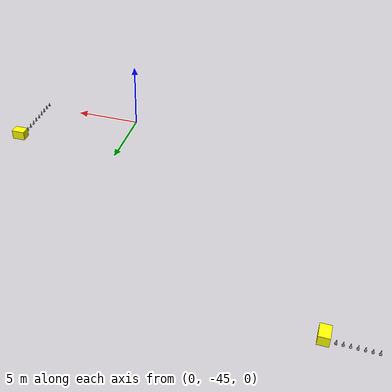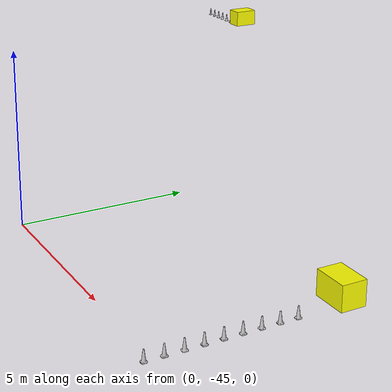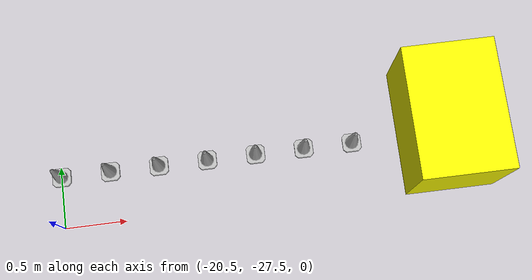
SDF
<sdf version="1.8">
 <world name="course_world">
  <physics name="1ms" type="ignored">
   <max_step_size>0.001</max_step_size>
   <real_time_factor>1.0</real_time_factor>
  </physics>
  <plugin filename="ignition-gazebo-physics-system" name="ignition::gazebo::systems::Physics"/>
  <plugin filename="ignition-gazebo-user-commands-system" name="ignition::gazebo::systems::UserCommands"/>
  <plugin filename="ignition-gazebo-scene-broadcaster-system" name="ignition::gazebo::systems::SceneBroadcaster"/>
  <scene><ambient>0.6 0.6 0.6 1</ambient><background>0.7 0.8 0.9 1</background></scene>
  <light type="directional" name="sun">
   <pose>0 0 50 0 0 0</pose>
   <diffuse>1 1 1 1</diffuse>
   <specular>0.4 0.4 0.4 1</specular>
   <direction>-0.3 0.2 -0.9</direction>
  </light>
  <include>
   <uri>model://construction_cone</uri>
   <name>construction_cone_1</name>
   <pose>-20.50 -27.08 0.0 0.0 0.0 0.0</pose>
  </include>
  <include>
   <uri>model://construction_cone</uri>
   <name>construction_cone_2</name>
   <pose>-20.10 -27.08 0.0 0.0 0.0 0.0</pose>
  </include>
  <include>
   <uri>model://construction_cone</uri>
   <name>construction_cone_3</name>
   <pose>-19.70 -27.08 0.0 0.0 0.0 0.0</pose>
  </include>
  <include>
   <uri>model://construction_cone</uri>
   <name>construction_cone_4</name>
   <pose>-19.30 -27.08 0.0 0.0 0.0 0.0</pose>
  </include>
  <include>
   <uri>model://construction_cone</uri>
   <name>construction_cone_5</name>
   <pose>-18.90 -27.08 0.0 0.0 0.0 0.0</pose>
  </include>
  <include>
   <uri>model://construction_cone</uri>
   <name>construction_cone_15</name>
   <pose>-18.50 -27.08 0.0 0.0 0.0 0.0</pose>
  </include>
  <include>
   <uri>model://construction_cone</uri>
   <name>construction_cone_16</name>
   <pose>-18.10 -27.08 0.0 0.0 0.0 0.0</pose>
  </include>
  <model name="yellow_cube_1">
   <pose>-17.40 -27.08 0.5 0.0 0.0 0.0</pose>
   <static>false</static>
   <link name="box_link">
    <inertial>
     <mass>1.0</mass>
     <inertia>
      <ixx>0.166667</ixx>
      <iyy>0.166667</iyy>
      <izz>0.166667</izz>
      <ixy>0.0</ixy>
      <ixz>0.0</ixz>
      <iyz>0.0</iyz>
     </inertia>
    </inertial>
    <collision name="box_collision"><geometry><box><size>0.7 1.0 0.7</size></box></geometry></collision>
    <visual name="box_visual">
     <geometry><box><size>0.7 1.0 0.7</size></box></geometry>
     <material>
      <ambient>1.0 1.0 0.0 1.0</ambient>
      <diffuse>1.0 1.0 0.0 1.0</diffuse>
      <specular>0.5 0.5 0.5 1.0</specular>
     </material>
    </visual>
   </link>
  </model>
  <include>
   <uri>model://construction_cone</uri>
   <name>construction_cone_6</name>
   <pose>7.99 -45.20 0.0 0.0 0.0 0.0</pose>
  </include>
  <include>
   <uri>model://construction_cone</uri>
   <name>construction_cone_7</name>
   <pose>7.99 -44.70 0.0 0.0 0.0 0.0</pose>
  </include>
  <include>
   <uri>model://construction_cone</uri>
   <name>construction_cone_8</name>
   <pose>7.99 -44.20 0.0 0.0 0.0 0.0</pose>
  </include>
  <include>
   <uri>model://construction_cone</uri>
   <name>construction_cone_9</name>
   <pose>7.99 -43.70 0.0 0.0 0.0 0.0</pose>
  </include>
  <include>
   <uri>model://construction_cone</uri>
   <name>construction_cone_10</name>
   <pose>7.99 -43.20 0.0 0.0 0.0 0.0</pose>
  </include>
  <include>
   <uri>model://construction_cone</uri>
   <name>construction_cone_11</name>
   <pose>7.99 -42.70 0.0 0.0 0.0 0.0</pose>
  </include>
  <include>
   <uri>model://construction_cone</uri>
   <name>construction_cone_12</name>
   <pose>7.99 -42.20 0.0 0.0 0.0 0.0</pose>
  </include>
  <include>
   <uri>model://construction_cone</uri>
   <name>construction_cone_13</name>
   <pose>7.99 -41.70 0.0 0.0 0.0 0.0</pose>
  </include>
  <include>
   <uri>model://construction_cone</uri>
   <name>construction_cone_14</name>
   <pose>7.99 -41.20 0.0 0.0 0.0 0.0</pose>
  </include>
  <model name="yellow_cube_2">
   <pose>7.99 -40.00 0.5 0.0 0.0 0.0</pose>
   <static>true</static>
   <link name="box_link">
    <inertial>
     <mass>1.0</mass>
     <inertia>
      <ixx>0.166667</ixx>
      <iyy>0.166667</iyy>
      <izz>0.166667</izz>
      <ixy>0.0</ixy>
      <ixz>0.0</ixz>
      <iyz>0.0</iyz>
     </inertia>
    </inertial>
    <collision name="box_collision"><geometry><box><size>1.0 0.7 0.7</size></box></geometry></collision>
    <visual name="box_visual">
     <geometry><box><size>1.0 0.7 0.7</size></box></geometry>
     <material>
      <ambient>1.0 1.0 0.0 1.0</ambient>
      <diffuse>1.0 1.0 0.0 1.0</diffuse>
      <specular>0.5 0.5 0.5 1.0</specular>
     </material>
    </visual>
   </link>
  </model>
  <spherical_coordinates>
   <surface_model>EARTH_WGS84</surface_model>
   <world_frame_orientation>ENU</world_frame_orientation>
   <latitude_deg>37.5665</latitude_deg>
   <longitude_deg>126.9780</longitude_deg>
   <elevation>0</elevation>
   <heading_deg>0</heading_deg>
  </spherical_coordinates>
 </world>
</sdf>

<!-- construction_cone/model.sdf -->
<sdf version="1.5">
  <model name="Construction Cone">
    <link name="link">
      <collision name="collision">
        <geometry>
          <mesh>
            <scale>3 3 3</scale>
            <uri>model://construction_cone/meshes/construction_cone.dae</uri>
          </mesh>
        </geometry>
      </collision>
      <visual name="visual">
        <geometry>
          <mesh>
            <scale>3 3 3</scale>
            <uri>model://construction_cone/meshes/construction_cone.dae</uri>
          </mesh>
        </geometry>
      </visual>
    </link>
  </model>
</sdf>
